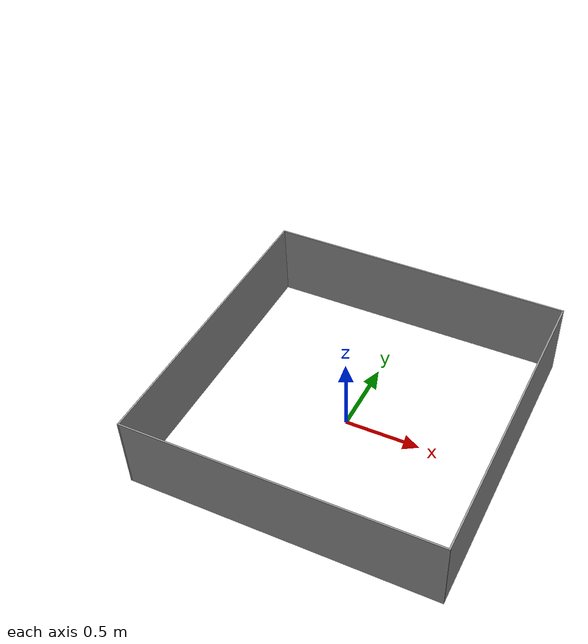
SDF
<?xml version='1.0'?>
<sdf version='1.7'>
  <model name='Zidovi'>
    <link name='Floor_0'>
      <pose>-0.965 -0.965006 2.5 0 -0 0</pose>
      <self_collide>0</self_collide>
      <enable_wind>0</enable_wind>
      <kinematic>0</kinematic>
      <visual name='Floor_0_Visual'>
        <pose>0 0 0.05 0 -0 0</pose>
        <geometry>
          <box>
            <size>0 0 0.1</size>
          </box>
        </geometry>
        <material>
          <script>
            <uri>file://media/materials/scripts/gazebo.material</uri>
            <name>Gazebo/Grey</name>
          </script>
          <ambient>1 1 1 1</ambient>
          <shader type='pixel'/>
        </material>
        <meta>
          <layer>1</layer>
        </meta>
        <transparency>0</transparency>
        <cast_shadows>1</cast_shadows>
      </visual>
      <collision name='Floor_0_Collision'>
        <laser_retro>0</laser_retro>
        <max_contacts>10</max_contacts>
        <pose>0 0 0.05 0 -0 0</pose>
        <geometry>
          <box>
            <size>0 0 0.1</size>
          </box>
        </geometry>
        <surface>
          <friction>
            <ode>
              <mu>1</mu>
              <mu2>1</mu2>
              <fdir1>0 0 0</fdir1>
              <slip1>0</slip1>
              <slip2>0</slip2>
            </ode>
            <torsional>
              <coefficient>1</coefficient>
              <patch_radius>0</patch_radius>
              <surface_radius>0</surface_radius>
              <use_patch_radius>1</use_patch_radius>
              <ode>
                <slip>0</slip>
              </ode>
            </torsional>
          </friction>
          <bounce>
            <restitution_coefficient>0</restitution_coefficient>
            <threshold>1e+06</threshold>
          </bounce>
          <contact>
            <collide_without_contact>0</collide_without_contact>
            <collide_without_contact_bitmask>1</collide_without_contact_bitmask>
            <collide_bitmask>1</collide_bitmask>
            <ode>
              <soft_cfm>0</soft_cfm>
              <soft_erp>0.2</soft_erp>
              <kp>1e+13</kp>
              <kd>1</kd>
              <max_vel>0.01</max_vel>
              <min_depth>0</min_depth>
            </ode>
            <bullet>
              <split_impulse>1</split_impulse>
              <split_impulse_penetration_threshold>-0.01</split_impulse_penetration_threshold>
              <soft_cfm>0</soft_cfm>
              <soft_erp>0.2</soft_erp>
              <kp>1e+13</kp>
              <kd>1</kd>
            </bullet>
          </contact>
        </surface>
      </collision>
    </link>
    <link name='Wall_0'>
      <pose>-0.965 0.034994 0 0 -0 1.5708</pose>
      <self_collide>0</self_collide>
      <enable_wind>0</enable_wind>
      <kinematic>0</kinematic>
      <visual name='Wall_0_Visual'>
        <pose>0 0 0.25 0 -0 0</pose>
        <geometry>
          <box>
            <size>2.01003 0.01 0.5</size>
          </box>
        </geometry>
        <material>
          <script>
            <uri>file://media/materials/scripts/gazebo.material</uri>
            <name>Gazebo/Grey</name>
          </script>
          <ambient>1 1 1 1</ambient>
          <shader type='pixel'/>
        </material>
        <meta>
          <layer>0</layer>
        </meta>
        <transparency>0</transparency>
        <cast_shadows>1</cast_shadows>
      </visual>
      <collision name='Wall_0_Collision'>
        <laser_retro>0</laser_retro>
        <max_contacts>10</max_contacts>
        <pose>0 0 0.25 0 -0 0</pose>
        <geometry>
          <box>
            <size>2.01003 0.01 0.5</size>
          </box>
        </geometry>
        <surface>
          <friction>
            <ode>
              <mu>1</mu>
              <mu2>1</mu2>
              <fdir1>0 0 0</fdir1>
              <slip1>0</slip1>
              <slip2>0</slip2>
            </ode>
            <torsional>
              <coefficient>1</coefficient>
              <patch_radius>0</patch_radius>
              <surface_radius>0</surface_radius>
              <use_patch_radius>1</use_patch_radius>
              <ode>
                <slip>0</slip>
              </ode>
            </torsional>
          </friction>
          <bounce>
            <restitution_coefficient>0</restitution_coefficient>
            <threshold>1e+06</threshold>
          </bounce>
          <contact>
            <collide_without_contact>0</collide_without_contact>
            <collide_without_contact_bitmask>1</collide_without_contact_bitmask>
            <collide_bitmask>1</collide_bitmask>
            <ode>
              <soft_cfm>0</soft_cfm>
              <soft_erp>0.2</soft_erp>
              <kp>1e+13</kp>
              <kd>1</kd>
              <max_vel>0.01</max_vel>
              <min_depth>0</min_depth>
            </ode>
            <bullet>
              <split_impulse>1</split_impulse>
              <split_impulse_penetration_threshold>-0.01</split_impulse_penetration_threshold>
              <soft_cfm>0</soft_cfm>
              <soft_erp>0.2</soft_erp>
              <kp>1e+13</kp>
              <kd>1</kd>
            </bullet>
          </contact>
        </surface>
      </collision>
    </link>
    <link name='Wall_1'>
      <pose>0.035 1.03499 0 0 -0 0</pose>
      <self_collide>0</self_collide>
      <enable_wind>0</enable_wind>
      <kinematic>0</kinematic>
      <visual name='Wall_1_Visual'>
        <pose>0 0 0.25 0 -0 0</pose>
        <geometry>
          <box>
            <size>2.01 0.01 0.5</size>
          </box>
        </geometry>
        <material>
          <script>
            <uri>file://media/materials/scripts/gazebo.material</uri>
            <name>Gazebo/Grey</name>
          </script>
          <ambient>1 1 1 1</ambient>
          <shader type='pixel'/>
        </material>
        <meta>
          <layer>0</layer>
        </meta>
        <transparency>0</transparency>
        <cast_shadows>1</cast_shadows>
      </visual>
      <collision name='Wall_1_Collision'>
        <laser_retro>0</laser_retro>
        <max_contacts>10</max_contacts>
        <pose>0 0 0.25 0 -0 0</pose>
        <geometry>
          <box>
            <size>2.01 0.01 0.5</size>
          </box>
        </geometry>
        <surface>
          <friction>
            <ode>
              <mu>1</mu>
              <mu2>1</mu2>
              <fdir1>0 0 0</fdir1>
              <slip1>0</slip1>
              <slip2>0</slip2>
            </ode>
            <torsional>
              <coefficient>1</coefficient>
              <patch_radius>0</patch_radius>
              <surface_radius>0</surface_radius>
              <use_patch_radius>1</use_patch_radius>
              <ode>
                <slip>0</slip>
              </ode>
            </torsional>
          </friction>
          <bounce>
            <restitution_coefficient>0</restitution_coefficient>
            <threshold>1e+06</threshold>
          </bounce>
          <contact>
            <collide_without_contact>0</collide_without_contact>
            <collide_without_contact_bitmask>1</collide_without_contact_bitmask>
            <collide_bitmask>1</collide_bitmask>
            <ode>
              <soft_cfm>0</soft_cfm>
              <soft_erp>0.2</soft_erp>
              <kp>1e+13</kp>
              <kd>1</kd>
              <max_vel>0.01</max_vel>
              <min_depth>0</min_depth>
            </ode>
            <bullet>
              <split_impulse>1</split_impulse>
              <split_impulse_penetration_threshold>-0.01</split_impulse_penetration_threshold>
              <soft_cfm>0</soft_cfm>
              <soft_erp>0.2</soft_erp>
              <kp>1e+13</kp>
              <kd>1</kd>
            </bullet>
          </contact>
        </surface>
      </collision>
    </link>
    <link name='Wall_2'>
      <pose>1.035 0.034994 0 0 0 -1.5708</pose>
      <self_collide>0</self_collide>
      <enable_wind>0</enable_wind>
      <kinematic>0</kinematic>
      <visual name='Wall_2_Visual'>
        <pose>0 0 0.25 0 -0 0</pose>
        <geometry>
          <box>
            <size>2.01 0.01 0.5</size>
          </box>
        </geometry>
        <material>
          <script>
            <uri>file://media/materials/scripts/gazebo.material</uri>
            <name>Gazebo/Grey</name>
          </script>
          <ambient>1 1 1 1</ambient>
          <shader type='pixel'/>
        </material>
        <meta>
          <layer>0</layer>
        </meta>
        <transparency>0</transparency>
        <cast_shadows>1</cast_shadows>
      </visual>
      <collision name='Wall_2_Collision'>
        <laser_retro>0</laser_retro>
        <max_contacts>10</max_contacts>
        <pose>0 0 0.25 0 -0 0</pose>
        <geometry>
          <box>
            <size>2.01 0.01 0.5</size>
          </box>
        </geometry>
        <surface>
          <friction>
            <ode>
              <mu>1</mu>
              <mu2>1</mu2>
              <fdir1>0 0 0</fdir1>
              <slip1>0</slip1>
              <slip2>0</slip2>
            </ode>
            <torsional>
              <coefficient>1</coefficient>
              <patch_radius>0</patch_radius>
              <surface_radius>0</surface_radius>
              <use_patch_radius>1</use_patch_radius>
              <ode>
                <slip>0</slip>
              </ode>
            </torsional>
          </friction>
          <bounce>
            <restitution_coefficient>0</restitution_coefficient>
            <threshold>1e+06</threshold>
          </bounce>
          <contact>
            <collide_without_contact>0</collide_without_contact>
            <collide_without_contact_bitmask>1</collide_without_contact_bitmask>
            <collide_bitmask>1</collide_bitmask>
            <ode>
              <soft_cfm>0</soft_cfm>
              <soft_erp>0.2</soft_erp>
              <kp>1e+13</kp>
              <kd>1</kd>
              <max_vel>0.01</max_vel>
              <min_depth>0</min_depth>
            </ode>
            <bullet>
              <split_impulse>1</split_impulse>
              <split_impulse_penetration_threshold>-0.01</split_impulse_penetration_threshold>
              <soft_cfm>0</soft_cfm>
              <soft_erp>0.2</soft_erp>
              <kp>1e+13</kp>
              <kd>1</kd>
            </bullet>
          </contact>
        </surface>
      </collision>
    </link>
    <link name='Wall_3'>
      <pose>0.035 -0.965006 0 0 -0 3.14159</pose>
      <self_collide>0</self_collide>
      <enable_wind>0</enable_wind>
      <kinematic>0</kinematic>
      <visual name='Wall_3_Visual'>
        <pose>0 0 0.25 0 -0 0</pose>
        <geometry>
          <box>
            <size>2.01 0.01 0.5</size>
          </box>
        </geometry>
        <material>
          <script>
            <uri>file://media/materials/scripts/gazebo.material</uri>
            <name>Gazebo/Grey</name>
          </script>
          <ambient>1 1 1 1</ambient>
          <shader type='pixel'/>
        </material>
        <meta>
          <layer>0</layer>
        </meta>
        <transparency>0</transparency>
        <cast_shadows>1</cast_shadows>
      </visual>
      <collision name='Wall_3_Collision'>
        <laser_retro>0</laser_retro>
        <max_contacts>10</max_contacts>
        <pose>0 0 0.25 0 -0 0</pose>
        <geometry>
          <box>
            <size>2.01 0.01 0.5</size>
          </box>
        </geometry>
        <surface>
          <friction>
            <ode>
              <mu>1</mu>
              <mu2>1</mu2>
              <fdir1>0 0 0</fdir1>
              <slip1>0</slip1>
              <slip2>0</slip2>
            </ode>
            <torsional>
              <coefficient>1</coefficient>
              <patch_radius>0</patch_radius>
              <surface_radius>0</surface_radius>
              <use_patch_radius>1</use_patch_radius>
              <ode>
                <slip>0</slip>
              </ode>
            </torsional>
          </friction>
          <bounce>
            <restitution_coefficient>0</restitution_coefficient>
            <threshold>1e+06</threshold>
          </bounce>
          <contact>
            <collide_without_contact>0</collide_without_contact>
            <collide_without_contact_bitmask>1</collide_without_contact_bitmask>
            <collide_bitmask>1</collide_bitmask>
            <ode>
              <soft_cfm>0</soft_cfm>
              <soft_erp>0.2</soft_erp>
              <kp>1e+13</kp>
              <kd>1</kd>
              <max_vel>0.01</max_vel>
              <min_depth>0</min_depth>
            </ode>
            <bullet>
              <split_impulse>1</split_impulse>
              <split_impulse_penetration_threshold>-0.01</split_impulse_penetration_threshold>
              <soft_cfm>0</soft_cfm>
              <soft_erp>0.2</soft_erp>
              <kp>1e+13</kp>
              <kd>1</kd>
            </bullet>
          </contact>
        </surface>
      </collision>
    </link>
    <static>1</static>
    <allow_auto_disable>1</allow_auto_disable>
  </model>
</sdf>
